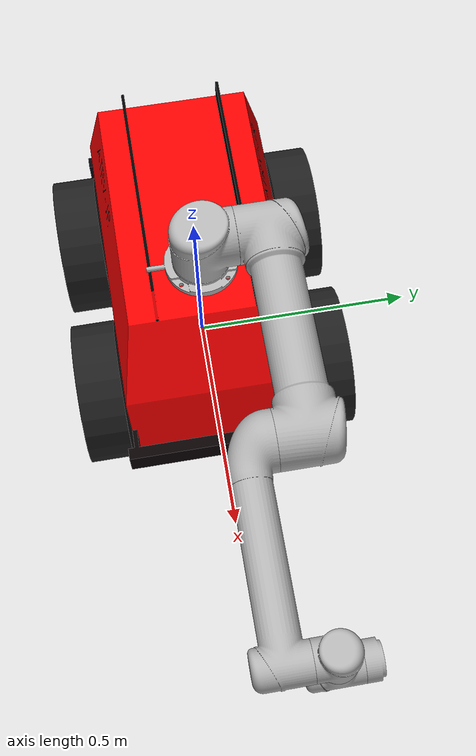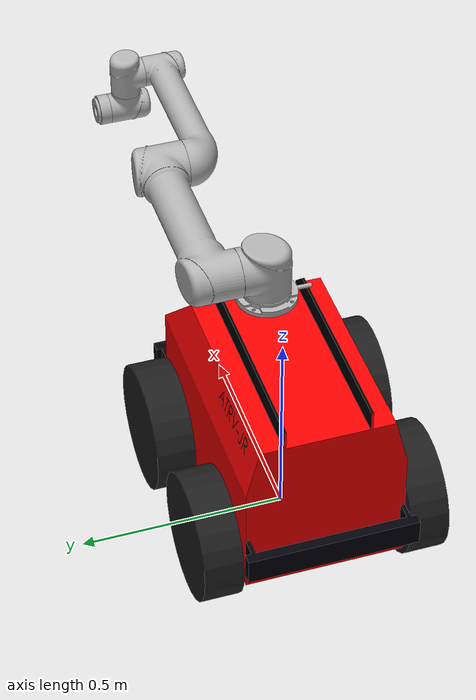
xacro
<?xml version="1.0"?>
<robot xmlns:xacro="http://www.ros.org/wiki/xacro" name="atrvjr">

    <xacro:include filename="$(find atrvjr_description)/urdf/atrvjr.xacro" />
    <xacro:atrvjr armConnectionFrame="arm_base_frame" />

    <xacro:macro name="ur5" params="baseframe">
        <!-- common stuff -->
        <xacro:include filename="$(find ur_description)/urdf/common.gazebo.xacro" />

        <!-- ur5 -->
        <xacro:include filename="$(find ur_description)/urdf/ur5.urdf.xacro" />

        <!-- arm -->
        <xacro:ur5_robot prefix="ur5_" joint_limited="false"/>

        <joint name="$from_{baseframe}_joint" type="fixed">
            <parent link="${baseframe}" />
            <child link = "ur5_arm_base_link" />
            <origin xyz="0.0 0.0 0.0" rpy="0.0 0.0 0.0" />
        </joint>
    </xacro:macro>

    <xacro:ur5 baseframe="arm_base_frame" />

</robot>

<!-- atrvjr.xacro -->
<robot xmlns:xacro="http://www.ros.org/wiki/xacro" name="atrvjr">
    <xacro:macro name="atrvjr" params="armConnectionFrame">

    <xacro:property name="M_PI" value="3.14159"/>
    <!-- Robot parameters -->
    <xacro:property name="center_height" value="0.1525" />
    <!-- This is not including the bumpers -->
    <xacro:property name="chassis_length" value="0.64" />
    <!-- This is including the bumpers -->
    <xacro:property name="chassis_length_bumpers" value="0.78" />
    <!-- This is not including the wheels -->
    <xacro:property name="chassis_width" value="0.385" />
    <!-- This is not including equipment and racks on the top -->
    <xacro:property name="chassis_height" value="0.52" />

        <!-- wheel properties -->
    <xacro:property name="wheel_radius" value="0.155" />
    <xacro:property name="wheel_width" value="0.095" />
    <xacro:property name="wheel_long_offset" value="0.19 " /> <!-- distance from robot center to wheel center in x direction (forward direction) -->
    <xacro:property name="wheel_lat_offset" value="0.25" /> <!-- distance from robot center to wheel center in y direction (lateral direction) -->

    <xacro:include filename="$(find atrvjr_description)/urdf/atrvjr_wheels.xacro" />

    <!-- mbot wheel generation based on imported macro -->
    <xacro:wheel prefix="front" side="left" origin_x="-${wheel_long_offset}" origin_y="${wheel_lat_offset}" >
        <origin xyz="0 0 0" rpy="0 0 0" />
    </xacro:wheel>

    <xacro:wheel prefix="front" side="right" origin_x="${wheel_long_offset}" origin_y="${wheel_lat_offset}" >
        <origin xyz="0 0 0" rpy="0 0 0" />
    </xacro:wheel>

    <xacro:wheel prefix="rear" side="left" origin_x="-${wheel_long_offset}" origin_y="-${wheel_lat_offset}" >
        <origin xyz="0 0 0" rpy="0 0 0" />
    </xacro:wheel>

    <xacro:wheel prefix="rear" side="right" origin_x="${wheel_long_offset}" origin_y="-${wheel_lat_offset}" >
        <origin xyz="0 0 0" rpy="0 0 0" />
    </xacro:wheel>

    <!-- links -->
    <!-- base_link -->
    <!-- The frame of the floor directly below the center_link and -->
    <!-- is needed for the navigation stack to work properly -->
    <link name="base_link">
    </link>

    <!-- center_link -->
    <!-- The link that is the origin of all of the components of the -->
    <!-- robot and should also represent the main chassis via inertial, -->
    <!-- visual, and geometry elements of the link -->
    <link name="center_link">
        <visual>
            <geometry>
                <mesh filename="package://atrvjr_description/meshes/atrv_body.dae" />
            </geometry>
        </visual>
        <collision>
            <origin xyz="0.1 0.25 0.19" rpy="0 0 0" />
            <geometry>
                <box size="${chassis_length} ${chassis_width+0.07} ${chassis_height-0.13}" />
            </geometry>
        </collision>
        <inertial>
            <origin xyz="0.1 0.25 0.2" rpy="1.57 0 0"/>
            <mass value="1000"/>
            <inertia ixx="2.01" ixy="0.0" ixz="0.0" iyy="2.01" iyz="0.0" izz="2.01"/>
        </inertial>
    </link>

    <!-- base_link -> center_link -->
    <joint name="base_link_joint" type="fixed">
        <origin xyz="-0.1 0.19 ${center_height-0.1}" rpy="1.57 0 0"/>
        <parent link="base_link"/>
        <child link="center_link"/>
    </joint>

     <!-- Arm Link -->
    <link name="${armConnectionFrame}"/>

    <joint name="$to_{armConnectionFrame}_joint" type="fixed">
        <origin xyz="0.12 0 0.56" rpy="0 0 0"/>
        <parent link="base_link"/>
        <child link="${armConnectionFrame}"/>
    </joint>

    <!-- Crossbow Imu Link -->
    <link name="cbimu_frame"/>

    <joint name="base_cbimu_joint" type="fixed">
        <origin xyz="0 0 0.267" rpy="0 ${M_PI} 0"/>
        <parent link="center_link"/>
        <child link="cbimu_frame"/>
    </joint>

        <!-- MPU Imu Link -->
    <link name="mpuimu_frame"/>

    <joint name="base_mpuimu_joint" type="fixed">
        <origin xyz="0 0 0.35" rpy="0 0 ${M_PI/2.0}"/>
        <parent link="center_link"/>
        <child link="mpuimu_frame"/>
    </joint>

    <!-- Hokuyo Link -->
    <link name="lrf_frame"/>

    <joint name="lrf_joint" type="fixed">
        <origin xyz="0.2 0 0.35" rpy="0 0 0"/>
        <parent link="center_link"/>
        <child link="lrf_frame"/>
    </joint>

    <!-- Hokuyo Link -->
    <link name="novatel"/>

    <joint name="novatel_joint" type="fixed">
        <origin xyz="-0.15 0.1 0.4" rpy="0 0 0"/>
        <parent link="center_link"/>
        <child link="novatel"/>
    </joint>

    </xacro:macro>
</robot>

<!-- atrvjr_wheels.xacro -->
<robot xmlns:xacro="http://wiki.ros.org/xacro" name="atrvjr" >

  <!-- wheel macro -->
  <xacro:macro name="wheel" params="prefix side origin_x origin_y *joint_pose">
    <!-- dummy link from which the real wheel will rotate from -->
    <link name="${prefix}_${side}_static">
      <inertial>
        <origin xyz="0 0 0" rpy="0 0 0"/>
        <mass value="0.01"/>
        <inertia
          ixx="0.0000288" ixy="0.0000001" ixz="0.000001"
          iyy="0.00004324" iyz="0.0000001"
          izz="0.0004130"/>
      </inertial>
    </link>

    <!-- to specify the position of the dummy link w.r.t. base link -->
    <joint name="${prefix}_${side}_static_joint" type="fixed">
      <parent link="base_link"/>
      <child link="${prefix}_${side}_static" />
      <origin xyz="${origin_x} ${origin_y} ${wheel_radius}" rpy="0 0 0" />
    </joint>

    <!-- each wheel -->
    <link name="${prefix}_${side}_wheel_link">
      <visual>
        <origin xyz="0 0 0" rpy="${M_PI/2} 0 0"/>
        <geometry>
          <cylinder radius="${wheel_radius}" length="${wheel_width}"/>
        </geometry>
        <material name="black" />
      </visual>
      <collision>
        <origin xyz="0 0 0" rpy="${M_PI/2} 0 0"/>
        <geometry>
          <cylinder radius="${wheel_radius}" length="${wheel_width}"/>
        </geometry>
      </collision>
      <inertial>
        <origin xyz="0 0 0" rpy="0 0 0"/>
        <mass value="20"/>
        <inertia ixx="0.021" ixy="0.0" ixz="0.0" iyy="0.04" iyz="0.0" izz="0.021"/>
      </inertial>
    </link>

    <!-- wheel joints -->
    <joint name="${prefix}_${side}_wheel" type="continuous">
      <parent link="${prefix}_${side}_static"/>
      <child link="${prefix}_${side}_wheel_link" />
      <xacro:insert_block name="joint_pose" />
      <axis xyz="0 1 0" />
    </joint>

    <!-- to be able to rotate the wheels with a special plugin -->
    <transmission name="${prefix}_${side}_wheel_trans">
      <type>transmission_interface/SimpleTransmission</type>
      <joint name="${prefix}_${side}_wheel">
        <hardwareInterface>hardware_interface/VelocityJointInterface</hardwareInterface> <!-- talvez PositionJointInterface em vez de Velocity-->
      </joint>
      <actuator name="${prefix}_${side}_actuator">
        <mechanicalReduction>1</mechanicalReduction>
      </actuator>
    </transmission>
  </xacro:macro>

</robot>

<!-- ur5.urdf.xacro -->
<robot xmlns:xacro="http://ros.org/wiki/xacro">

  <xacro:include filename="$(find ur_description)/urdf/ur.transmission.xacro" />
  <xacro:include filename="$(find ur_description)/urdf/ur.gazebo.xacro" />

  <xacro:macro name="cylinder_inertial" params="radius length mass *origin">
    <inertial>
      <mass value="${mass}" />
      <xacro:insert_block name="origin" />
      <inertia ixx="${0.0833333 * mass * (3 * radius * radius + length * length)}" ixy="0.0" ixz="0.0"
        iyy="${0.0833333 * mass * (3 * radius * radius + length * length)}" iyz="0.0"
        izz="${0.5 * mass * radius * radius}" />
    </inertial>
  </xacro:macro>

  <xacro:macro name="ur5_robot" params="prefix joint_limited
     shoulder_pan_lower_limit:=${-pi}    shoulder_pan_upper_limit:=${pi}
     shoulder_lift_lower_limit:=${-pi}    shoulder_lift_upper_limit:=${pi}
     elbow_joint_lower_limit:=${-pi}    elbow_joint_upper_limit:=${pi}
     wrist_1_lower_limit:=${-pi}    wrist_1_upper_limit:=${pi}
     wrist_2_lower_limit:=${-pi}    wrist_2_upper_limit:=${pi}
     wrist_3_lower_limit:=${-pi}    wrist_3_upper_limit:=${pi}">

    <!-- Inertia parameters -->
    <xacro:property name="base_mass" value="1.0" />  <!-- This mass might be incorrect -->
    <xacro:property name="shoulder_mass" value="3.7000" />
    <xacro:property name="upper_arm_mass" value="8.3930" />
    <xacro:property name="forearm_mass" value="2.2750" />
    <xacro:property name="wrist_1_mass" value="1.2190" />
    <xacro:property name="wrist_2_mass" value="1.2190" />
    <xacro:property name="wrist_3_mass" value="0.1879" />

    <xacro:property name="shoulder_cog" value="0.0 0.00193 -0.02561" />
    <xacro:property name="upper_arm_cog" value="0.0 -0.024201 0.2125" />
    <xacro:property name="forearm_cog" value="0.0 0.0265 0.11993" />
    <xacro:property name="wrist_1_cog" value="0.0 0.110949 0.01634" />
    <xacro:property name="wrist_2_cog" value="0.0 0.0018 0.11099" />
    <xacro:property name="wrist_3_cog" value="0.0 0.001159 0.0" />

    <!-- Kinematic model -->
    <!-- Properties from urcontrol.conf -->
    <xacro:property name="d1" value="0.089159" />
    <xacro:property name="a2" value="-0.42500" />
    <xacro:property name="a3" value="-0.39225" />
    <xacro:property name="d4" value="0.10915" />
    <xacro:property name="d5" value="0.09465" />
    <xacro:property name="d6" value="0.0823" />

    <!-- Arbitrary offsets for shoulder/elbow joints -->
    <xacro:property name="shoulder_offset" value="0.13585" />  <!-- measured from model -->
    <xacro:property name="elbow_offset" value="-0.1197" /> <!-- measured from model -->

    <!-- link lengths used in model -->
    <xacro:property name="shoulder_height" value="${d1}" />
    <xacro:property name="upper_arm_length" value="${-a2}" />
    <xacro:property name="forearm_length" value="${-a3}" />
    <xacro:property name="wrist_1_length" value="${d4 - elbow_offset - shoulder_offset}" />
    <xacro:property name="wrist_2_length" value="${d5}" />
    <xacro:property name="wrist_3_length" value="${d6}" />
    <!--property name="shoulder_height" value="0.089159" /-->
    <!--property name="shoulder_offset" value="0.13585" /-->  <!-- shoulder_offset - elbow_offset + wrist_1_length = 0.10915 -->
    <!--property name="upper_arm_length" value="0.42500" /-->
    <!--property name="elbow_offset" value="0.1197" /-->       <!-- CAD measured -->
    <!--property name="forearm_length" value="0.39225" /-->
    <!--property name="wrist_1_length" value="0.093" /-->     <!-- CAD measured -->
    <!--property name="wrist_2_length" value="0.09465" /-->   <!-- In CAD this distance is 0.930, but in the spec it is 0.09465 -->
    <!--property name="wrist_3_length" value="0.0823" /-->

    <xacro:property name="shoulder_radius" value="0.060" />   <!-- manually measured -->
    <xacro:property name="upper_arm_radius" value="0.054" />  <!-- manually measured -->
    <xacro:property name="elbow_radius" value="0.060" />      <!-- manually measured -->
    <xacro:property name="forearm_radius" value="0.040" />    <!-- manually measured -->
    <xacro:property name="wrist_radius" value="0.045" />      <!-- manually measured -->

    <link name="${prefix}arm_base_link" >
      <visual>
        <geometry>
          <mesh filename="package://ur_description/meshes/ur5/visual/base.dae" />
        </geometry>
        <material name="LightGrey">
          <color rgba="0.7 0.7 0.7 1.0"/>
        </material>
      </visual>
      <collision>
        <geometry>
          <mesh filename="package://ur_description/meshes/ur5/collision/base.stl" />
        </geometry>
      </collision>
      <xacro:cylinder_inertial radius="0.06" length="0.05" mass="${base_mass}">
        <origin xyz="0.0 0.0 0.0" rpy="0 0 0" />
      </xacro:cylinder_inertial>
    </link>

    <joint name="${prefix}shoulder_pan_joint" type="revolute">
      <parent link="${prefix}arm_base_link" />
      <child link = "${prefix}shoulder_link" />
      <origin xyz="0.0 0.0 ${shoulder_height}" rpy="0.0 0.0 0.0" />
      <axis xyz="0 0 1" />
      <xacro:unless value="${joint_limited}">
        <limit lower="${-2.0 * pi}" upper="${2.0 * pi}" effort="150.0" velocity="3.15"/>
      </xacro:unless>
      <xacro:if value="${joint_limited}">
        <limit lower="${shoulder_pan_lower_limit}" upper="${shoulder_pan_upper_limit}" effort="150.0" velocity="3.15"/>
      </xacro:if>
      <dynamics damping="0.0" friction="0.0"/>
    </joint>

    <link name="${prefix}shoulder_link">
      <visual>
        <geometry>
          <mesh filename="package://ur_description/meshes/ur5/visual/shoulder.dae" />
        </geometry>
        <material name="LightGrey">
          <color rgba="0.7 0.7 0.7 1.0"/>
        </material>
      </visual>
      <collision>
        <geometry>
          <mesh filename="package://ur_description/meshes/ur5/collision/shoulder.stl" />
        </geometry>
      </collision>
      <xacro:cylinder_inertial radius="0.06" length="0.15" mass="${shoulder_mass}">
        <origin xyz="0.0 0.0 0.0" rpy="0 0 0" />
      </xacro:cylinder_inertial>
    </link>

    <joint name="${prefix}shoulder_lift_joint" type="revolute">
      <parent link="${prefix}shoulder_link" />
      <child link = "${prefix}upper_arm_link" />
      <origin xyz="0.0 ${shoulder_offset} 0.0" rpy="0.0 ${pi / 2.0} 0.0" />
      <axis xyz="0 1 0" />
      <xacro:unless value="${joint_limited}">
        <limit lower="${-2.0 * pi}" upper="${2.0 * pi}" effort="150.0" velocity="3.15"/>
      </xacro:unless>
      <xacro:if value="${joint_limited}">
        <limit lower="${shoulder_lift_lower_limit}" upper="${shoulder_lift_upper_limit}" effort="150.0" velocity="3.15"/>
      </xacro:if>
      <dynamics damping="0.0" friction="0.0"/>
    </joint>

    <link name="${prefix}upper_arm_link">
      <visual>
        <geometry>
          <mesh filename="package://ur_description/meshes/ur5/visual/upperarm.dae" />
        </geometry>
        <material name="LightGrey">
          <color rgba="0.7 0.7 0.7 1.0"/>
        </material>
      </visual>
      <collision>
        <geometry>
          <mesh filename="package://ur_description/meshes/ur5/collision/upperarm.stl" />
        </geometry>
      </collision>
      <xacro:cylinder_inertial radius="0.06" length="0.56" mass="${upper_arm_mass}">
        <origin xyz="0.0 0.0 0.28" rpy="0 0 0" />
      </xacro:cylinder_inertial>
    </link>

    <joint name="${prefix}elbow_joint" type="revolute">
      <parent link="${prefix}upper_arm_link" />
      <child link = "${prefix}forearm_link" />
      <origin xyz="0.0 ${elbow_offset} ${upper_arm_length}" rpy="0.0 0.0 0.0" />
      <axis xyz="0 1 0" />
      <xacro:unless value="${joint_limited}">
        <limit lower="${-pi}" upper="${pi}" effort="150.0" velocity="3.15"/>
      </xacro:unless>
      <xacro:if value="${joint_limited}">
        <limit lower="${elbow_joint_lower_limit}" upper="${elbow_joint_upper_limit}" effort="150.0" velocity="3.15"/>
      </xacro:if>
      <dynamics damping="0.0" friction="0.0"/>
    </joint>

    <link name="${prefix}forearm_link">
      <visual>
        <geometry>
          <mesh filename="package://ur_description/meshes/ur5/visual/forearm.dae" />
        </geometry>
        <material name="LightGrey">
          <color rgba="0.7 0.7 0.7 1.0"/>
        </material>
      </visual>
      <collision>
        <geometry>
          <mesh filename="package://ur_description/meshes/ur5/collision/forearm.stl" />
        </geometry>
      </collision>
      <xacro:cylinder_inertial radius="0.06" length="0.5" mass="${forearm_mass}">
        <origin xyz="0.0 0.0 0.25" rpy="0 0 0" />
      </xacro:cylinder_inertial>
    </link>

    <joint name="${prefix}wrist_1_joint" type="revolute">
      <parent link="${prefix}forearm_link" />
      <child link = "${prefix}wrist_1_link" />
      <origin xyz="0.0 0.0 ${forearm_length}" rpy="0.0 ${pi / 2.0} 0.0" />
      <axis xyz="0 1 0" />
      <xacro:unless value="${joint_limited}">
        <limit lower="${-2.0 * pi}" upper="${2.0 * pi}" effort="28.0" velocity="3.2"/>
      </xacro:unless>
      <xacro:if value="${joint_limited}">
        <limit lower="${wrist_1_lower_limit}" upper="${wrist_1_upper_limit}" effort="28.0" velocity="3.2"/>
      </xacro:if>
      <dynamics damping="0.0" friction="0.0"/>
    </joint>

    <link name="${prefix}wrist_1_link">
      <visual>
        <geometry>
          <mesh filename="package://ur_description/meshes/ur5/visual/wrist1.dae" />
        </geometry>
        <material name="LightGrey">
          <color rgba="0.7 0.7 0.7 1.0"/>
        </material>
      </visual>
      <collision>
        <geometry>
          <mesh filename="package://ur_description/meshes/ur5/collision/wrist1.stl" />
        </geometry>
      </collision>
      <inertial>
          <mass value="${wrist_1_mass}"/>
          <inertia ixx="0.0001" ixy="0.0" ixz="0.0" iyy="0.0001" iyz="0.0" izz="0.0001"/>
      </inertial>
    </link>

    <joint name="${prefix}wrist_2_joint" type="revolute">
      <parent link="${prefix}wrist_1_link" />
      <child link = "${prefix}wrist_2_link" />
      <origin xyz="0.0 ${wrist_1_length} 0.0" rpy="0.0 0.0 0.0" />
      <axis xyz="0 0 1" />
      <xacro:unless value="${joint_limited}">
        <limit lower="${-2.0 * pi}" upper="${2.0 * pi}" effort="28.0" velocity="3.2"/>
      </xacro:unless>
      <xacro:if value="${joint_limited}">
        <limit lower="${wrist_2_lower_limit}" upper="${wrist_2_upper_limit}" effort="28.0" velocity="3.2"/>
      </xacro:if>
      <dynamics damping="0.0" friction="0.0"/>
    </joint>

    <link name="${prefix}wrist_2_link">
      <visual>
        <geometry>
          <mesh filename="package://ur_description/meshes/ur5/visual/wrist2.dae" />
        </geometry>
        <material name="LightGrey">
          <color rgba="0.7 0.7 0.7 1.0"/>
        </material>
      </visual>
      <collision>
        <geometry>
          <mesh filename="package://ur_description/meshes/ur5/collision/wrist2.stl" />
        </geometry>
      </collision>
      <inertial>
          <mass value="${wrist_2_mass}"/>
          <inertia ixx="0.0001" ixy="0.0" ixz="0.0" iyy="0.0001" iyz="0.0" izz="0.0001"/>
      </inertial>
    </link>

    <joint name="${prefix}wrist_3_joint" type="revolute">
      <parent link="${prefix}wrist_2_link" />
      <child link = "${prefix}wrist_3_link" />
      <origin xyz="0.0 0.0 ${wrist_2_length}" rpy="0.0 0.0 0.0" />
      <axis xyz="0 1 0" />
      <xacro:unless value="${joint_limited}">
        <limit lower="${-2.0 * pi}" upper="${2.0 * pi}" effort="28.0" velocity="3.2"/>
      </xacro:unless>
      <xacro:if value="${joint_limited}">
        <limit lower="${wrist_3_lower_limit}" upper="${wrist_3_upper_limit}" effort="28.0" velocity="3.2"/>
      </xacro:if>
      <dynamics damping="0.0" friction="0.0"/>
    </joint>

    <link name="${prefix}wrist_3_link">
      <visual>
        <geometry>
          <mesh filename="package://ur_description/meshes/ur5/visual/wrist3.dae" />
        </geometry>
        <material name="LightGrey">
          <color rgba="0.7 0.7 0.7 1.0"/>
        </material>
      </visual>
      <collision>
        <geometry>
          <mesh filename="package://ur_description/meshes/ur5/collision/wrist3.stl" />
        </geometry>
      </collision>
      <inertial>
          <mass value="${wrist_3_mass}"/>
          <inertia ixx="0.0001" ixy="0.0" ixz="0.0" iyy="0.0001" iyz="0.0" izz="0.0001"/>
      </inertial>
    </link>

    <joint name="${prefix}ee_fixed_joint" type="fixed">
      <parent link="${prefix}wrist_3_link" />
      <child link = "${prefix}ee_link" />
      <origin xyz="0.0 ${wrist_3_length} 0.0" rpy="0.0 0.0 ${pi/2.0}" />
    </joint>

    <link name="${prefix}ee_link">
      <collision>
        <geometry>
          <box size="0.01 0.01 0.01"/>
        </geometry>
        <origin rpy="0 0 0" xyz="-0.01 0 0"/>
      </collision>
    </link>

    <xacro:ur_arm_transmission prefix="${prefix}" />
    <xacro:ur_arm_gazebo prefix="${prefix}" />

    <!-- ROS base_link to UR 'Base' Coordinates transform -->
    <link name="${prefix}base"/>
    <joint name="${prefix}base_link-base_fixed_joint" type="fixed">
      <!-- NOTE: this rotation is only needed as long as base_link itself is
                 not corrected wrt the real robot (ie: rotated over 180
                 degrees)
      -->
      <origin xyz="0 0 0" rpy="0 0 ${-pi}"/>
      <parent link="${prefix}arm_base_link"/>
      <child link="${prefix}base"/>
    </joint>

    <!-- Frame coincident with all-zeros TCP on UR controller -->
    <link name="${prefix}tool0"/>
    <joint name="${prefix}wrist_3_link-tool0_fixed_joint" type="fixed">
      <origin xyz="0 ${wrist_3_length} 0" rpy="${pi/-2.0} 0 0"/>
      <parent link="${prefix}wrist_3_link"/>
      <child link="${prefix}tool0"/>
    </joint>

  </xacro:macro>
</robot>
